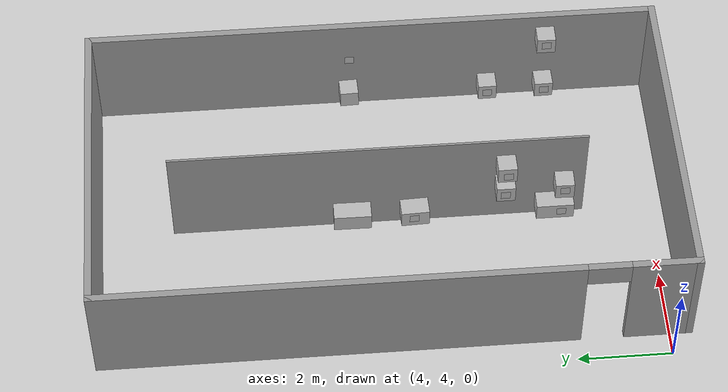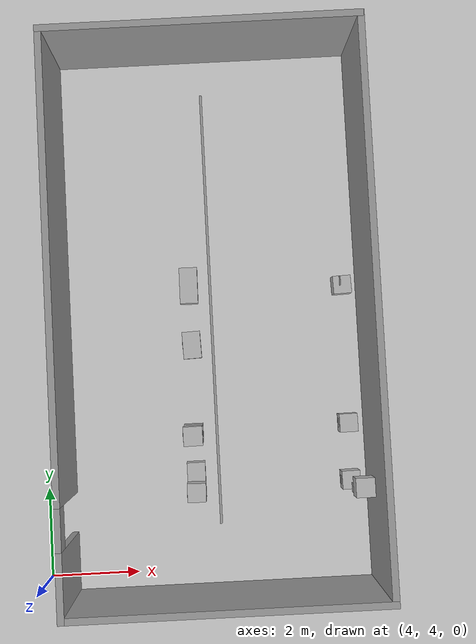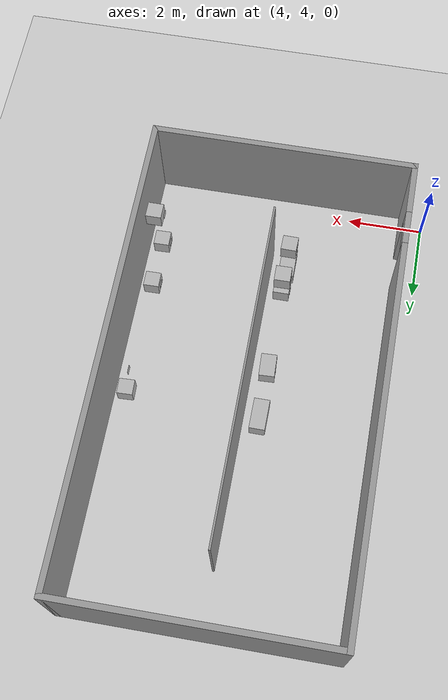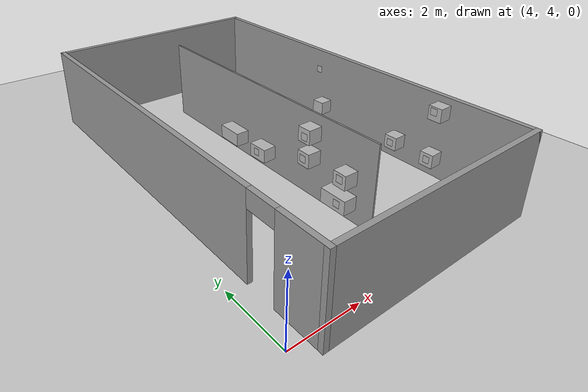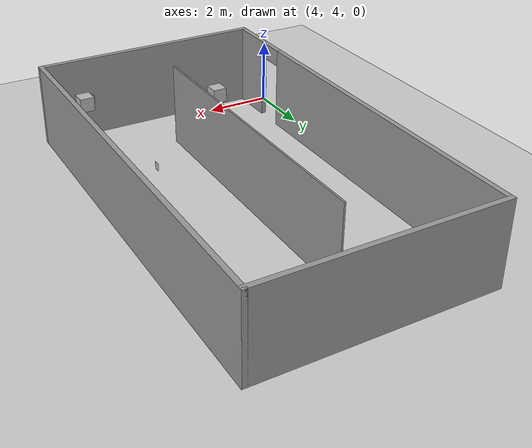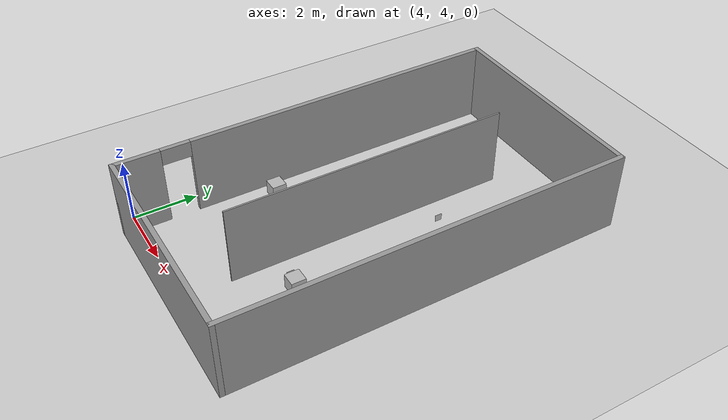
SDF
<sdf version="1.6">
 <world name="default">
  <model name="ground_plane">
   <static>1</static>
   <link name="link">
    <collision name="collision">
     <geometry><plane><normal>0 0 1</normal><size>300 300</size></plane></geometry>
     <surface>
      <contact><collide_bitmask>65535</collide_bitmask></contact>
      <friction><ode><mu>100</mu><mu2>50</mu2></ode></friction>
     </surface>
    </collision>
    <visual name="visual">
     <geometry><plane><normal>0 0 1</normal><size>100 100</size></plane></geometry>
     <material>
      <script><uri>file://media/materials/scripts/gazebo.material</uri><name>Gazebo/Grey</name></script>
     </material>
    </visual>
   </link>
  </model>
  <model name="CuboQR8">
   <link name="link">
    <pose>1.33161 0.916406 0.895911 -0 -0 -0.362899</pose>
    <inertial>
     <mass>0.39</mass>
     <inertia><ixx>0.00058</ixx><ixy>0</ixy><ixz>0</ixz><iyy>0.00058</iyy><iyz>0</iyz><izz>0.00019</izz></inertia>
    </inertial>
    <visual name="visual">
     <geometry><box><size>0.4 0.8 0.4</size></box></geometry>
     <material>
      <script>
       <uri>model://Caja/materials/scripts</uri>
       <uri>model://Caja/materials/textures</uri>
       <name>Caja/Diffuse</name>
      </script>
      <shader type="pixel"/>
     </material>
    </visual>
    <collision name="collision">
     <geometry><box><size>0.4 0.8 0.4</size></box></geometry>
     <surface>
      <friction>
       <ode><mu>1</mu><mu2>1</mu2><fdir1>0 0 0</fdir1><slip1>0</slip1><slip2>0</slip2></ode>
       <torsional>
        <coefficient>1</coefficient>
        <patch_radius>0</patch_radius>
        <surface_radius>0</surface_radius>
        <use_patch_radius>1</use_patch_radius>
        <ode><slip>0</slip></ode>
       </torsional>
      </friction>
      <bounce><restitution_coefficient>0</restitution_coefficient><threshold>1e+06</threshold></bounce>
      <contact>
       <collide_without_contact>0</collide_without_contact>
       <collide_without_contact_bitmask>1</collide_without_contact_bitmask>
       <collide_bitmask>1</collide_bitmask>
       <ode>
        <soft_cfm>0</soft_cfm>
        <soft_erp>0.2</soft_erp>
        <kp>1e+13</kp>
        <kd>1</kd>
        <max_vel>0.01</max_vel>
        <min_depth>0</min_depth>
       </ode>
       <bullet>
        <split_impulse>1</split_impulse>
        <split_impulse_penetration_threshold>-0.01</split_impulse_penetration_threshold>
        <soft_cfm>0</soft_cfm>
        <soft_erp>0.2</soft_erp>
        <kp>1e+13</kp>
        <kd>1</kd>
       </bullet>
      </contact>
     </surface>
    </collision>
   </link>
   <static>0</static>
   <pose>6.52855 9.13954 -0.044975 -9e-06 -4e-06 0.354617</pose>
  </model>
  <model name="CuboQR30">
   <link name="link">
    <pose>1.4917 0.506438 0.904274 0 -0 0.004736</pose>
    <inertial>
     <mass>0.39</mass>
     <inertia><ixx>0.00058</ixx><ixy>0</ixy><ixz>0</ixz><iyy>0.00058</iyy><iyz>0</iyz><izz>0.00019</izz></inertia>
    </inertial>
    <visual name="visual">
     <geometry><box><size>0.4 0.6 0.4</size></box></geometry>
     <material>
      <script>
       <uri>model://Caja/materials/scripts</uri>
       <uri>model://Caja/materials/textures</uri>
       <name>Caja/Diffuse</name>
      </script>
      <shader type="pixel"/>
     </material>
    </visual>
    <collision name="collision">
     <geometry><box><size>0.4 0.6 0.4</size></box></geometry>
     <surface>
      <friction>
       <ode><mu>1</mu><mu2>1</mu2><fdir1>0 0 0</fdir1><slip1>0</slip1><slip2>0</slip2></ode>
       <torsional>
        <coefficient>1</coefficient>
        <patch_radius>0</patch_radius>
        <surface_radius>0</surface_radius>
        <use_patch_radius>1</use_patch_radius>
        <ode><slip>0</slip></ode>
       </torsional>
      </friction>
      <bounce><restitution_coefficient>0</restitution_coefficient><threshold>1e+06</threshold></bounce>
      <contact>
       <collide_without_contact>0</collide_without_contact>
       <collide_without_contact_bitmask>1</collide_without_contact_bitmask>
       <collide_bitmask>1</collide_bitmask>
       <ode>
        <soft_cfm>0</soft_cfm>
        <soft_erp>0.2</soft_erp>
        <kp>1e+13</kp>
        <kd>1</kd>
        <max_vel>0.01</max_vel>
        <min_depth>0</min_depth>
       </ode>
       <bullet>
        <split_impulse>1</split_impulse>
        <split_impulse_penetration_threshold>-0.01</split_impulse_penetration_threshold>
        <soft_cfm>0</soft_cfm>
        <soft_erp>0.2</soft_erp>
        <kp>1e+13</kp>
        <kd>1</kd>
       </bullet>
      </contact>
     </surface>
    </collision>
   </link>
   <static>0</static>
   <pose>5.99382 8.57393 -0.053336 -1.7e-05 2e-06 0.031771</pose>
  </model>
  <model name="CuboQR4">
   <link name="link">
    <pose>1.4541 1.7784 0.940521 0 -0 0</pose>
    <inertial>
     <mass>0.39</mass>
     <inertia><ixx>0.00058</ixx><ixy>0</ixy><ixz>0</ixz><iyy>0.00058</iyy><iyz>0</iyz><izz>0.00019</izz></inertia>
    </inertial>
    <visual name="visual">
     <geometry><box><size>0.4 0.8 0.4</size></box></geometry>
     <material>
      <script>
       <uri>model://Caja/materials/scripts</uri>
       <uri>model://Caja/materials/textures</uri>
       <name>Caja/Diffuse</name>
      </script>
      <shader type="pixel"/>
     </material>
    </visual>
    <collision name="collision">
     <geometry><box><size>0.4 0.8 0.4</size></box></geometry>
     <surface>
      <friction>
       <ode><mu>1</mu><mu2>1</mu2><fdir1>0 0 0</fdir1><slip1>0</slip1><slip2>0</slip2></ode>
       <torsional>
        <coefficient>1</coefficient>
        <patch_radius>0</patch_radius>
        <surface_radius>0</surface_radius>
        <use_patch_radius>1</use_patch_radius>
        <ode><slip>0</slip></ode>
       </torsional>
      </friction>
      <bounce><restitution_coefficient>0</restitution_coefficient><threshold>1e+06</threshold></bounce>
      <contact>
       <collide_without_contact>0</collide_without_contact>
       <collide_without_contact_bitmask>1</collide_without_contact_bitmask>
       <collide_bitmask>1</collide_bitmask>
       <ode>
        <soft_cfm>0</soft_cfm>
        <soft_erp>0.2</soft_erp>
        <kp>1e+13</kp>
        <kd>1</kd>
        <max_vel>0.01</max_vel>
        <min_depth>0</min_depth>
       </ode>
       <bullet>
        <split_impulse>1</split_impulse>
        <split_impulse_penetration_threshold>-0.01</split_impulse_penetration_threshold>
        <soft_cfm>0</soft_cfm>
        <soft_erp>0.2</soft_erp>
        <kp>1e+13</kp>
        <kd>1</kd>
       </bullet>
      </contact>
     </surface>
    </collision>
   </link>
   <static>0</static>
   <pose>5.98514 4.34705 -0.089558 -1.7e-05 -1e-06 0.001748</pose>
  </model>
  <model name="CuboQR2">
   <link name="link">
    <pose>1.59419 -0.501465 1.58657 -0 -0 -0.004218</pose>
    <inertial>
     <mass>0.39</mass>
     <inertia><ixx>0.00058</ixx><ixy>0</ixy><ixz>0</ixz><iyy>0.00058</iyy><iyz>0</iyz><izz>0.00019</izz></inertia>
    </inertial>
    <visual name="visual">
     <geometry><box><size>0.4 0.4 0.4</size></box></geometry>
     <material>
      <script>
       <uri>model://Caja/materials/scripts</uri>
       <uri>model://Caja/materials/textures</uri>
       <name>Caja/Diffuse</name>
      </script>
      <shader type="pixel"/>
     </material>
    </visual>
    <collision name="collision">
     <geometry><box><size>0.4 0.4 0.4</size></box></geometry>
     <surface>
      <friction>
       <ode><mu>1</mu><mu2>1</mu2><fdir1>0 0 0</fdir1><slip1>0</slip1><slip2>0</slip2></ode>
       <torsional>
        <coefficient>1</coefficient>
        <patch_radius>0</patch_radius>
        <surface_radius>0</surface_radius>
        <use_patch_radius>1</use_patch_radius>
        <ode><slip>0</slip></ode>
       </torsional>
      </friction>
      <bounce><restitution_coefficient>0</restitution_coefficient><threshold>1e+06</threshold></bounce>
      <contact>
       <collide_without_contact>0</collide_without_contact>
       <collide_without_contact_bitmask>1</collide_without_contact_bitmask>
       <collide_bitmask>1</collide_bitmask>
       <ode>
        <soft_cfm>0</soft_cfm>
        <soft_erp>0.2</soft_erp>
        <kp>1e+13</kp>
        <kd>1</kd>
        <max_vel>0.01</max_vel>
        <min_depth>0</min_depth>
       </ode>
       <bullet>
        <split_impulse>1</split_impulse>
        <split_impulse_penetration_threshold>-0.01</split_impulse_penetration_threshold>
        <soft_cfm>0</soft_cfm>
        <soft_erp>0.2</soft_erp>
        <kp>1e+13</kp>
        <kd>1</kd>
       </bullet>
      </contact>
     </surface>
    </collision>
   </link>
   <static>0</static>
   <pose>5.85292 6.48203 -0.048167 7e-06 9e-06 -0.01717</pose>
  </model>
  <model name="CuboQR3">
   <link name="link">
    <pose>1.72852 -0.054688 2.25892 0 -0 0.030523</pose>
    <inertial>
     <mass>0.39</mass>
     <inertia><ixx>0.00058</ixx><ixy>0</ixy><ixz>0</ixz><iyy>0.00058</iyy><iyz>0</iyz><izz>0.00019</izz></inertia>
    </inertial>
    <visual name="visual">
     <geometry><box><size>0.4 0.4 0.4</size></box></geometry>
     <material>
      <script>
       <uri>model://Caja/materials/scripts</uri>
       <uri>model://Caja/materials/textures</uri>
       <name>Caja/Diffuse</name>
      </script>
      <shader type="pixel"/>
     </material>
    </visual>
    <collision name="collision">
     <geometry><box><size>0.4 0.4 0.4</size></box></geometry>
     <surface>
      <friction>
       <ode><mu>1</mu><mu2>1</mu2><fdir1>0 0 0</fdir1><slip1>0</slip1><slip2>0</slip2></ode>
       <torsional>
        <coefficient>1</coefficient>
        <patch_radius>0</patch_radius>
        <surface_radius>0</surface_radius>
        <use_patch_radius>1</use_patch_radius>
        <ode><slip>0</slip></ode>
       </torsional>
      </friction>
      <bounce><restitution_coefficient>0</restitution_coefficient><threshold>1e+06</threshold></bounce>
      <contact>
       <collide_without_contact>0</collide_without_contact>
       <collide_without_contact_bitmask>1</collide_without_contact_bitmask>
       <collide_bitmask>1</collide_bitmask>
       <ode>
        <soft_cfm>0</soft_cfm>
        <soft_erp>0.2</soft_erp>
        <kp>1e+13</kp>
        <kd>1</kd>
        <max_vel>0.01</max_vel>
        <min_depth>0</min_depth>
       </ode>
       <bullet>
        <split_impulse>1</split_impulse>
        <split_impulse_penetration_threshold>-0.01</split_impulse_penetration_threshold>
        <soft_cfm>0</soft_cfm>
        <soft_erp>0.2</soft_erp>
        <kp>1e+13</kp>
        <kd>1</kd>
       </bullet>
      </contact>
     </surface>
    </collision>
   </link>
   <static>0</static>
   <pose>5.70295 7.29191 -0.054824 -7e-06 3e-06 -0.019304</pose>
  </model>
  <model name="Plano">
   <link name="link">
    <gravity>0</gravity>
    <pose>-0.103478 0.986463 0.8108 0 -0 0</pose>
    <inertial>
     <mass>1e-06</mass>
     <inertia><ixx>0.00058</ixx><ixy>0</ixy><ixz>0</ixz><iyy>0.00058</iyy><iyz>0</iyz><izz>0.00019</izz></inertia>
    </inertial>
    <visual name="visual">
     <geometry><box><size>0.2 1e-06 0.2</size></box></geometry>
     <material>
      <script>
       <uri>model://Plano/materials/scripts</uri>
       <uri>model://Plano/materials/textures</uri>
       <name>Plano/Diffuse</name>
      </script>
      <shader type="pixel"/>
     </material>
     <cast_shadows>0</cast_shadows>
    </visual>
    <collision name="collision">
     <geometry><box><size>0.2 1e-06 0.2</size></box></geometry>
     <surface>
      <friction>
       <ode><mu>1</mu><mu2>1</mu2><fdir1>0 0 0</fdir1><slip1>0</slip1><slip2>0</slip2></ode>
       <torsional>
        <coefficient>1</coefficient>
        <patch_radius>0</patch_radius>
        <surface_radius>0</surface_radius>
        <use_patch_radius>1</use_patch_radius>
        <ode><slip>0</slip></ode>
       </torsional>
      </friction>
      <bounce><restitution_coefficient>0</restitution_coefficient><threshold>1e+06</threshold></bounce>
      <contact>
       <collide_without_contact>0</collide_without_contact>
       <collide_without_contact_bitmask>1</collide_without_contact_bitmask>
       <collide_bitmask>1</collide_bitmask>
       <ode>
        <soft_cfm>0</soft_cfm>
        <soft_erp>0.2</soft_erp>
        <kp>1e+13</kp>
        <kd>1</kd>
        <max_vel>0.01</max_vel>
        <min_depth>0</min_depth>
       </ode>
       <bullet>
        <split_impulse>1</split_impulse>
        <split_impulse_penetration_threshold>-0.01</split_impulse_penetration_threshold>
        <soft_cfm>0</soft_cfm>
        <soft_erp>0.2</soft_erp>
        <kp>1e+13</kp>
        <kd>1</kd>
       </bullet>
      </contact>
     </surface>
    </collision>
   </link>
   <static>0</static>
   <pose>6.24495 5.89293 0.053748 0 0 -1.57043</pose>
  </model>
  <model name="Plano2">
   <link name="link">
    <gravity>0</gravity>
    <pose>0.45527 1.12131 0.660976 0 -0 0</pose>
    <inertial>
     <mass>1e-06</mass>
     <inertia><ixx>0.00058</ixx><ixy>0</ixy><ixz>0</ixz><iyy>0.00058</iyy><iyz>0</iyz><izz>0.00019</izz></inertia>
    </inertial>
    <visual name="visual">
     <geometry><box><size>0.2 1e-06 0.2</size></box></geometry>
     <material>
      <script>
       <uri>model://Plano2/materials/scripts</uri>
       <uri>model://Plano2/materials/textures</uri>
       <name>Plano2/Diffuse</name>
      </script>
      <shader type="pixel"/>
     </material>
     <cast_shadows>0</cast_shadows>
    </visual>
    <collision name="collision">
     <geometry><box><size>0.2 1e-06 0.2</size></box></geometry>
     <surface>
      <friction>
       <ode><mu>1</mu><mu2>1</mu2><fdir1>0 0 0</fdir1><slip1>0</slip1><slip2>0</slip2></ode>
       <torsional>
        <coefficient>1</coefficient>
        <patch_radius>0</patch_radius>
        <surface_radius>0</surface_radius>
        <use_patch_radius>1</use_patch_radius>
        <ode><slip>0</slip></ode>
       </torsional>
      </friction>
      <bounce><restitution_coefficient>0</restitution_coefficient><threshold>1e+06</threshold></bounce>
      <contact>
       <collide_without_contact>0</collide_without_contact>
       <collide_without_contact_bitmask>1</collide_without_contact_bitmask>
       <collide_bitmask>1</collide_bitmask>
       <ode>
        <soft_cfm>0</soft_cfm>
        <soft_erp>0.2</soft_erp>
        <kp>1e+13</kp>
        <kd>1</kd>
        <max_vel>0.01</max_vel>
        <min_depth>0</min_depth>
       </ode>
       <bullet>
        <split_impulse>1</split_impulse>
        <split_impulse_penetration_threshold>-0.01</split_impulse_penetration_threshold>
        <soft_cfm>0</soft_cfm>
        <soft_erp>0.2</soft_erp>
        <kp>1e+13</kp>
        <kd>1</kd>
       </bullet>
      </contact>
     </surface>
    </collision>
   </link>
   <static>0</static>
   <pose>6.11634 6.41923 0.907634 0 0 -1.5813</pose>
  </model>
  <model name="Caja">
   <link name="link">
    <pose>1.53848 1.3495 -1.37205 0.031423 0.044064 -0.000927</pose>
    <inertial>
     <mass>0.39</mass>
     <inertia><ixx>0.00058</ixx><ixy>0</ixy><ixz>0</ixz><iyy>0.00058</iyy><iyz>0</iyz><izz>0.00019</izz></inertia>
    </inertial>
    <visual name="visual">
     <geometry><box><size>0.4 0.4 0.4</size></box></geometry>
     <material>
      <script>
       <uri>model://Caja/materials/scripts</uri>
       <uri>model://Caja/materials/textures</uri>
       <name>Caja/Diffuse</name>
      </script>
      <shader type="pixel"/>
     </material>
    </visual>
    <collision name="collision">
     <geometry><box><size>0.4 0.4 0.4</size></box></geometry>
     <surface>
      <friction>
       <ode><mu>1</mu><mu2>1</mu2><fdir1>0 0 0</fdir1><slip1>0</slip1><slip2>0</slip2></ode>
       <torsional>
        <coefficient>1</coefficient>
        <patch_radius>0</patch_radius>
        <surface_radius>0</surface_radius>
        <use_patch_radius>1</use_patch_radius>
        <ode><slip>0</slip></ode>
       </torsional>
      </friction>
      <bounce><restitution_coefficient>0</restitution_coefficient><threshold>1e+06</threshold></bounce>
      <contact>
       <collide_without_contact>0</collide_without_contact>
       <collide_without_contact_bitmask>1</collide_without_contact_bitmask>
       <collide_bitmask>1</collide_bitmask>
       <ode>
        <soft_cfm>0</soft_cfm>
        <soft_erp>0.2</soft_erp>
        <kp>1e+13</kp>
        <kd>1</kd>
        <max_vel>0.01</max_vel>
        <min_depth>0</min_depth>
       </ode>
       <bullet>
        <split_impulse>1</split_impulse>
        <split_impulse_penetration_threshold>-0.01</split_impulse_penetration_threshold>
        <soft_cfm>0</soft_cfm>
        <soft_erp>0.2</soft_erp>
        <kp>1e+13</kp>
        <kd>1</kd>
       </bullet>
      </contact>
     </surface>
    </collision>
   </link>
   <static>0</static>
   <pose>5.83979 5.86875 0.229074 1.53941 -0.002301 -0.046636</pose>
  </model>
  <model name="Plano3">
   <link name="link">
    <gravity>0</gravity>
    <pose>-0.321438 0.622252 1.59842 0 -0 0</pose>
    <inertial>
     <mass>1e-06</mass>
     <inertia><ixx>0.00058</ixx><ixy>0</ixy><ixz>0</ixz><iyy>0.00058</iyy><iyz>0</iyz><izz>0.00019</izz></inertia>
    </inertial>
    <visual name="visual">
     <geometry><box><size>0.2 1e-06 0.2</size></box></geometry>
     <material>
      <script>
       <uri>model://Plano3/materials/scripts</uri>
       <uri>model://Plano3/materials/textures</uri>
       <name>Plano3/Diffuse</name>
      </script>
      <shader type="pixel"/>
     </material>
     <cast_shadows>0</cast_shadows>
    </visual>
    <collision name="collision">
     <geometry><box><size>0.2 1e-06 0.2</size></box></geometry>
     <surface>
      <friction>
       <ode><mu>1</mu><mu2>1</mu2><fdir1>0 0 0</fdir1><slip1>0</slip1><slip2>0</slip2></ode>
       <torsional>
        <coefficient>1</coefficient>
        <patch_radius>0</patch_radius>
        <surface_radius>0</surface_radius>
        <use_patch_radius>1</use_patch_radius>
        <ode><slip>0</slip></ode>
       </torsional>
      </friction>
      <bounce><restitution_coefficient>0</restitution_coefficient><threshold>1e+06</threshold></bounce>
      <contact>
       <collide_without_contact>0</collide_without_contact>
       <collide_without_contact_bitmask>1</collide_without_contact_bitmask>
       <collide_bitmask>1</collide_bitmask>
       <ode>
        <soft_cfm>0</soft_cfm>
        <soft_erp>0.2</soft_erp>
        <kp>1e+13</kp>
        <kd>1</kd>
        <max_vel>0.01</max_vel>
        <min_depth>0</min_depth>
       </ode>
       <bullet>
        <split_impulse>1</split_impulse>
        <split_impulse_penetration_threshold>-0.01</split_impulse_penetration_threshold>
        <soft_cfm>0</soft_cfm>
        <soft_erp>0.2</soft_erp>
        <kp>1e+13</kp>
        <kd>1</kd>
       </bullet>
      </contact>
     </surface>
    </collision>
   </link>
   <static>0</static>
   <pose>6.60144 6.90216 -0.05097 0 0 -1.57531</pose>
  </model>
  <model name="Plano4">
   <link name="link">
    <gravity>0</gravity>
    <pose>0.342529 1.36427 1.91258 0 -0 0.032722</pose>
    <inertial>
     <mass>1e-06</mass>
     <inertia><ixx>0.00058</ixx><ixy>0</ixy><ixz>0</ixz><iyy>0.00058</iyy><iyz>0</iyz><izz>0.00019</izz></inertia>
    </inertial>
    <visual name="visual">
     <geometry><box><size>0.2 1e-06 0.2</size></box></geometry>
     <material>
      <script>
       <uri>model://Plano4/materials/scripts</uri>
       <uri>model://Plano4/materials/textures</uri>
       <name>Plano4/Diffuse</name>
      </script>
      <shader type="pixel"/>
     </material>
     <cast_shadows>0</cast_shadows>
    </visual>
    <collision name="collision">
     <geometry><box><size>0.2 1e-06 0.2</size></box></geometry>
     <surface>
      <friction>
       <ode><mu>1</mu><mu2>1</mu2><fdir1>0 0 0</fdir1><slip1>0</slip1><slip2>0</slip2></ode>
       <torsional>
        <coefficient>1</coefficient>
        <patch_radius>0</patch_radius>
        <surface_radius>0</surface_radius>
        <use_patch_radius>1</use_patch_radius>
        <ode><slip>0</slip></ode>
       </torsional>
      </friction>
      <bounce><restitution_coefficient>0</restitution_coefficient><threshold>1e+06</threshold></bounce>
      <contact>
       <collide_without_contact>0</collide_without_contact>
       <collide_without_contact_bitmask>1</collide_without_contact_bitmask>
       <collide_bitmask>1</collide_bitmask>
       <ode>
        <soft_cfm>0</soft_cfm>
        <soft_erp>0.2</soft_erp>
        <kp>1e+13</kp>
        <kd>1</kd>
        <max_vel>0.01</max_vel>
        <min_depth>0</min_depth>
       </ode>
       <bullet>
        <split_impulse>1</split_impulse>
        <split_impulse_penetration_threshold>-0.01</split_impulse_penetration_threshold>
        <soft_cfm>0</soft_cfm>
        <soft_erp>0.2</soft_erp>
        <kp>1e+13</kp>
        <kd>1</kd>
       </bullet>
      </contact>
     </surface>
    </collision>
   </link>
   <static>0</static>
   <pose>5.86012 7.53798 0.26346 0 0 -1.5802</pose>
  </model>
  <model name="Plano30">
   <link name="link">
    <gravity>0</gravity>
    <pose>0.142948 1.63527 -0.030652 0 -0 0.095189</pose>
    <inertial>
     <mass>1e-06</mass>
     <inertia><ixx>0.00058</ixx><ixy>0</ixy><ixz>0</ixz><iyy>0.00058</iyy><iyz>0</iyz><izz>0.00019</izz></inertia>
    </inertial>
    <visual name="visual">
     <geometry><box><size>0.2 1e-06 0.2</size></box></geometry>
     <material>
      <script>
       <uri>model://Plano30/materials/scripts</uri>
       <uri>model://Plano30/materials/textures</uri>
       <name>Plano30/Diffuse</name>
      </script>
      <shader type="pixel"/>
     </material>
     <cast_shadows>0</cast_shadows>
    </visual>
    <collision name="collision">
     <geometry><box><size>0.2 1e-06 0.2</size></box></geometry>
     <surface>
      <friction>
       <ode><mu>1</mu><mu2>1</mu2><fdir1>0 0 0</fdir1><slip1>0</slip1><slip2>0</slip2></ode>
       <torsional>
        <coefficient>1</coefficient>
        <patch_radius>0</patch_radius>
        <surface_radius>0</surface_radius>
        <use_patch_radius>1</use_patch_radius>
        <ode><slip>0</slip></ode>
       </torsional>
      </friction>
      <bounce><restitution_coefficient>0</restitution_coefficient><threshold>1e+06</threshold></bounce>
      <contact>
       <collide_without_contact>0</collide_without_contact>
       <collide_without_contact_bitmask>1</collide_without_contact_bitmask>
       <collide_bitmask>1</collide_bitmask>
       <ode>
        <soft_cfm>0</soft_cfm>
        <soft_erp>0.2</soft_erp>
        <kp>1e+13</kp>
        <kd>1</kd>
        <max_vel>0.01</max_vel>
        <min_depth>0</min_depth>
       </ode>
       <bullet>
        <split_impulse>1</split_impulse>
        <split_impulse_penetration_threshold>-0.01</split_impulse_penetration_threshold>
        <soft_cfm>0</soft_cfm>
        <soft_erp>0.2</soft_erp>
        <kp>1e+13</kp>
        <kd>1</kd>
       </bullet>
      </contact>
     </surface>
    </collision>
   </link>
   <static>0</static>
   <pose>5.63172 9.35401 0.90979 0 0 -1.61066</pose>
  </model>
  <model name="Plano12">
   <link name="link">
    <gravity>0</gravity>
    <pose>-0.824351 -0.041274 1.91889 0 -0 0.02962</pose>
    <inertial>
     <mass>1e-06</mass>
     <inertia><ixx>0.00058</ixx><ixy>0</ixy><ixz>0</ixz><iyy>0.00058</iyy><iyz>0</iyz><izz>0.00019</izz></inertia>
    </inertial>
    <visual name="visual">
     <geometry><box><size>0.2 1e-06 0.2</size></box></geometry>
     <material>
      <script>
       <uri>model://Plano12/materials/scripts</uri>
       <uri>model://Plano12/materials/textures</uri>
       <name>Plano12/Diffuse</name>
      </script>
      <shader type="pixel"/>
     </material>
     <cast_shadows>0</cast_shadows>
    </visual>
    <collision name="collision">
     <geometry><box><size>0.2 1e-06 0.2</size></box></geometry>
     <surface>
      <friction>
       <ode><mu>1</mu><mu2>1</mu2><fdir1>0 0 0</fdir1><slip1>0</slip1><slip2>0</slip2></ode>
       <torsional>
        <coefficient>1</coefficient>
        <patch_radius>0</patch_radius>
        <surface_radius>0</surface_radius>
        <use_patch_radius>1</use_patch_radius>
        <ode><slip>0</slip></ode>
       </torsional>
      </friction>
      <bounce><restitution_coefficient>0</restitution_coefficient><threshold>1e+06</threshold></bounce>
      <contact>
       <collide_without_contact>0</collide_without_contact>
       <collide_without_contact_bitmask>1</collide_without_contact_bitmask>
       <collide_bitmask>1</collide_bitmask>
       <ode>
        <soft_cfm>0</soft_cfm>
        <soft_erp>0.2</soft_erp>
        <kp>1e+13</kp>
        <kd>1</kd>
        <max_vel>0.01</max_vel>
        <min_depth>0</min_depth>
       </ode>
       <bullet>
        <split_impulse>1</split_impulse>
        <split_impulse_penetration_threshold>-0.01</split_impulse_penetration_threshold>
        <soft_cfm>0</soft_cfm>
        <soft_erp>0.2</soft_erp>
        <kp>1e+13</kp>
        <kd>1</kd>
       </bullet>
      </contact>
     </surface>
    </collision>
   </link>
   <static>0</static>
   <pose>10.7037 9.47205 0.27256 0 0 -1.59709</pose>
  </model>
  <model name="CuboQR29">
   <link name="link">
    <pose>0.690619 0.614958 1.22299 0.424631 -0.083036 -0.038114</pose>
    <inertial>
     <mass>0.39</mass>
     <inertia><ixx>0.00058</ixx><ixy>0</ixy><ixz>0</ixz><iyy>0.00058</iyy><iyz>0</iyz><izz>0.00019</izz></inertia>
    </inertial>
    <visual name="visual">
     <geometry><box><size>0.4 0.4 0.4</size></box></geometry>
     <material>
      <script>
       <uri>model://Caja/materials/scripts</uri>
       <uri>model://Caja/materials/textures</uri>
       <name>Caja/Diffuse</name>
      </script>
      <shader type="pixel"/>
     </material>
    </visual>
    <collision name="collision">
     <geometry><box><size>0.4 0.4 0.4</size></box></geometry>
     <surface>
      <friction>
       <ode><mu>1</mu><mu2>1</mu2><fdir1>0 0 0</fdir1><slip1>0</slip1><slip2>0</slip2></ode>
       <torsional>
        <coefficient>1</coefficient>
        <patch_radius>0</patch_radius>
        <surface_radius>0</surface_radius>
        <use_patch_radius>1</use_patch_radius>
        <ode><slip>0</slip></ode>
       </torsional>
      </friction>
      <bounce><restitution_coefficient>0</restitution_coefficient><threshold>1e+06</threshold></bounce>
      <contact>
       <collide_without_contact>0</collide_without_contact>
       <collide_without_contact_bitmask>1</collide_without_contact_bitmask>
       <collide_bitmask>1</collide_bitmask>
       <ode>
        <soft_cfm>0</soft_cfm>
        <soft_erp>0.2</soft_erp>
        <kp>1e+13</kp>
        <kd>1</kd>
        <max_vel>0.01</max_vel>
        <min_depth>0</min_depth>
       </ode>
       <bullet>
        <split_impulse>1</split_impulse>
        <split_impulse_penetration_threshold>-0.01</split_impulse_penetration_threshold>
        <soft_cfm>0</soft_cfm>
        <soft_erp>0.2</soft_erp>
        <kp>1e+13</kp>
        <kd>1</kd>
       </bullet>
      </contact>
     </surface>
    </collision>
   </link>
   <static>0</static>
   <pose>9.85707 9.48132 0.085116 -0.429419 -1.47945 -1.53026</pose>
  </model>
  <model name="CuboQR26">
   <link name="link">
    <pose>0.660263 0.176511 0.326352 0.050369 0 0.010192</pose>
    <inertial>
     <mass>0.39</mass>
     <inertia><ixx>0.00058</ixx><ixy>0</ixy><ixz>0</ixz><iyy>0.00058</iyy><iyz>0</iyz><izz>0.00019</izz></inertia>
    </inertial>
    <visual name="visual">
     <geometry><box><size>0.4 0.4 0.4</size></box></geometry>
     <material>
      <script>
       <uri>model://Caja/materials/scripts</uri>
       <uri>model://Caja/materials/textures</uri>
       <name>Caja/Diffuse</name>
      </script>
      <shader type="pixel"/>
     </material>
    </visual>
    <collision name="collision">
     <geometry><box><size>0.4 0.4 0.4</size></box></geometry>
     <surface>
      <friction>
       <ode><mu>1</mu><mu2>1</mu2><fdir1>0 0 0</fdir1><slip1>0</slip1><slip2>0</slip2></ode>
       <torsional>
        <coefficient>1</coefficient>
        <patch_radius>0</patch_radius>
        <surface_radius>0</surface_radius>
        <use_patch_radius>1</use_patch_radius>
        <ode><slip>0</slip></ode>
       </torsional>
      </friction>
      <bounce><restitution_coefficient>0</restitution_coefficient><threshold>1e+06</threshold></bounce>
      <contact>
       <collide_without_contact>0</collide_without_contact>
       <collide_without_contact_bitmask>1</collide_without_contact_bitmask>
       <collide_bitmask>1</collide_bitmask>
       <ode>
        <soft_cfm>0</soft_cfm>
        <soft_erp>0.2</soft_erp>
        <kp>1e+13</kp>
        <kd>1</kd>
        <max_vel>0.01</max_vel>
        <min_depth>0</min_depth>
       </ode>
       <bullet>
        <split_impulse>1</split_impulse>
        <split_impulse_penetration_threshold>-0.01</split_impulse_penetration_threshold>
        <soft_cfm>0</soft_cfm>
        <soft_erp>0.2</soft_erp>
        <kp>1e+13</kp>
        <kd>1</kd>
       </bullet>
      </contact>
     </surface>
    </collision>
   </link>
   <static>0</static>
   <pose>11.1817 7.05082 0.188929 1.57421 -1.56064 -1.61587</pose>
  </model>
  <model name="Plano26_0">
   <link name="link">
    <gravity>0</gravity>
    <pose>-0.169184 -0.069468 -0.055235 0 -0 0.01407</pose>
    <inertial>
     <mass>1e-06</mass>
     <inertia><ixx>0.00058</ixx><ixy>0</ixy><ixz>0</ixz><iyy>0.00058</iyy><iyz>0</iyz><izz>0.00019</izz></inertia>
    </inertial>
    <visual name="visual">
     <geometry><box><size>0.2 1e-06 0.2</size></box></geometry>
     <material>
      <script>
       <uri>model://Plano26/materials/scripts</uri>
       <uri>model://Plano26/materials/textures</uri>
       <name>Plano26/Diffuse</name>
      </script>
      <shader type="pixel"/>
     </material>
     <cast_shadows>0</cast_shadows>
    </visual>
    <collision name="collision">
     <geometry><box><size>0.2 1e-06 0.2</size></box></geometry>
     <surface>
      <friction>
       <ode><mu>1</mu><mu2>1</mu2><fdir1>0 0 0</fdir1><slip1>0</slip1><slip2>0</slip2></ode>
       <torsional>
        <coefficient>1</coefficient>
        <patch_radius>0</patch_radius>
        <surface_radius>0</surface_radius>
        <use_patch_radius>1</use_patch_radius>
        <ode><slip>0</slip></ode>
       </torsional>
      </friction>
      <bounce><restitution_coefficient>0</restitution_coefficient><threshold>1e+06</threshold></bounce>
      <contact>
       <collide_without_contact>0</collide_without_contact>
       <collide_without_contact_bitmask>1</collide_without_contact_bitmask>
       <collide_bitmask>1</collide_bitmask>
       <ode>
        <soft_cfm>0</soft_cfm>
        <soft_erp>0.2</soft_erp>
        <kp>1e+13</kp>
        <kd>1</kd>
        <max_vel>0.01</max_vel>
        <min_depth>0</min_depth>
       </ode>
       <bullet>
        <split_impulse>1</split_impulse>
        <split_impulse_penetration_threshold>-0.01</split_impulse_penetration_threshold>
        <soft_cfm>0</soft_cfm>
        <soft_erp>0.2</soft_erp>
        <kp>1e+13</kp>
        <kd>1</kd>
       </bullet>
      </contact>
     </surface>
    </collision>
   </link>
   <static>0</static>
   <pose>10.7205 7.06672 0.90647 0 0 -1.58759</pose>
  </model>
  <model name="CuboQR19">
   <link name="link">
    <pose>-3.06365 0.40851 -2.07539 0.030877 0.017361 -0.698851</pose>
    <inertial>
     <mass>0.39</mass>
     <inertia><ixx>0.00058</ixx><ixy>0</ixy><ixz>0</ixz><iyy>0.00058</iyy><iyz>0</iyz><izz>0.00019</izz></inertia>
    </inertial>
    <visual name="visual">
     <geometry><box><size>0.4 0.4 0.4</size></box></geometry>
     <material>
      <script>
       <uri>model://Caja/materials/scripts</uri>
       <uri>model://Caja/materials/textures</uri>
       <name>Caja/Diffuse</name>
      </script>
      <shader type="pixel"/>
     </material>
    </visual>
    <collision name="collision">
     <geometry><box><size>0.4 0.4 0.4</size></box></geometry>
     <surface>
      <friction>
       <ode><mu>1</mu><mu2>1</mu2><fdir1>0 0 0</fdir1><slip1>0</slip1><slip2>0</slip2></ode>
       <torsional>
        <coefficient>1</coefficient>
        <patch_radius>0</patch_radius>
        <surface_radius>0</surface_radius>
        <use_patch_radius>1</use_patch_radius>
        <ode><slip>0</slip></ode>
       </torsional>
      </friction>
      <bounce><restitution_coefficient>0</restitution_coefficient><threshold>1e+06</threshold></bounce>
      <contact>
       <collide_without_contact>0</collide_without_contact>
       <collide_without_contact_bitmask>1</collide_without_contact_bitmask>
       <collide_bitmask>1</collide_bitmask>
       <ode>
        <soft_cfm>0</soft_cfm>
        <soft_erp>0.2</soft_erp>
        <kp>1e+13</kp>
        <kd>1</kd>
        <max_vel>0.01</max_vel>
        <min_depth>0</min_depth>
       </ode>
       <bullet>
        <split_impulse>1</split_impulse>
        <split_impulse_penetration_threshold>-0.01</split_impulse_penetration_threshold>
        <soft_cfm>0</soft_cfm>
        <soft_erp>0.2</soft_erp>
        <kp>1e+13</kp>
        <kd>1</kd>
       </bullet>
      </contact>
     </surface>
    </collision>
   </link>
   <static>0</static>
   <pose>8.37635 7.70627 0.135897 3.1068 -0.006563 2.43859</pose>
  </model>
  <model name="Plano26">
   <link name="link">
    <gravity>0</gravity>
    <pose>0.070412 -0.023465 0.724825 0 -0 0</pose>
    <inertial>
     <mass>1e-06</mass>
     <inertia><ixx>0.00058</ixx><ixy>0</ixy><ixz>0</ixz><iyy>0.00058</iyy><iyz>0</iyz><izz>0.00019</izz></inertia>
    </inertial>
    <visual name="visual">
     <geometry><box><size>0.2 1e-06 0.2</size></box></geometry>
     <material>
      <script>
       <uri>model://Plano26/materials/scripts</uri>
       <uri>model://Plano26/materials/textures</uri>
       <name>Plano26/Diffuse</name>
      </script>
      <shader type="pixel"/>
     </material>
     <cast_shadows>0</cast_shadows>
    </visual>
    <collision name="collision">
     <geometry><box><size>0.2 1e-06 0.2</size></box></geometry>
     <surface>
      <friction>
       <ode><mu>1</mu><mu2>1</mu2><fdir1>0 0 0</fdir1><slip1>0</slip1><slip2>0</slip2></ode>
       <torsional>
        <coefficient>1</coefficient>
        <patch_radius>0</patch_radius>
        <surface_radius>0</surface_radius>
        <use_patch_radius>1</use_patch_radius>
        <ode><slip>0</slip></ode>
       </torsional>
      </friction>
      <bounce><restitution_coefficient>0</restitution_coefficient><threshold>1e+06</threshold></bounce>
      <contact>
       <collide_without_contact>0</collide_without_contact>
       <collide_without_contact_bitmask>1</collide_without_contact_bitmask>
       <collide_bitmask>1</collide_bitmask>
       <ode>
        <soft_cfm>0</soft_cfm>
        <soft_erp>0.2</soft_erp>
        <kp>1e+13</kp>
        <kd>1</kd>
        <max_vel>0.01</max_vel>
        <min_depth>0</min_depth>
       </ode>
       <bullet>
        <split_impulse>1</split_impulse>
        <split_impulse_penetration_threshold>-0.01</split_impulse_penetration_threshold>
        <soft_cfm>0</soft_cfm>
        <soft_erp>0.2</soft_erp>
        <kp>1e+13</kp>
        <kd>1</kd>
       </bullet>
      </contact>
     </surface>
    </collision>
   </link>
   <static>0</static>
   <pose>10.7123 6.04698 1.56042 0 0 -1.57945</pose>
  </model>
  <model name="CuboQR20">
   <link name="link">
    <pose>-0.731507 -0.6285 0.186566 -0.030889 0.015573 0.01146</pose>
    <inertial>
     <mass>0.39</mass>
     <inertia><ixx>0.00058</ixx><ixy>0</ixy><ixz>0</ixz><iyy>0.00058</iyy><iyz>0</iyz><izz>0.00019</izz></inertia>
    </inertial>
    <visual name="visual">
     <geometry><box><size>0.4 0.4 0.4</size></box></geometry>
     <material>
      <script>
       <uri>model://Caja/materials/scripts</uri>
       <uri>model://Caja/materials/textures</uri>
       <name>Caja/Diffuse</name>
      </script>
      <shader type="pixel"/>
     </material>
    </visual>
    <collision name="collision">
     <geometry><box><size>0.4 0.4 0.4</size></box></geometry>
     <surface>
      <friction>
       <ode><mu>1</mu><mu2>1</mu2><fdir1>0 0 0</fdir1><slip1>0</slip1><slip2>0</slip2></ode>
       <torsional>
        <coefficient>1</coefficient>
        <patch_radius>0</patch_radius>
        <surface_radius>0</surface_radius>
        <use_patch_radius>1</use_patch_radius>
        <ode><slip>0</slip></ode>
       </torsional>
      </friction>
      <bounce><restitution_coefficient>0</restitution_coefficient><threshold>1e+06</threshold></bounce>
      <contact>
       <collide_without_contact>0</collide_without_contact>
       <collide_without_contact_bitmask>1</collide_without_contact_bitmask>
       <collide_bitmask>1</collide_bitmask>
       <ode>
        <soft_cfm>0</soft_cfm>
        <soft_erp>0.2</soft_erp>
        <kp>1e+13</kp>
        <kd>1</kd>
        <max_vel>0.01</max_vel>
        <min_depth>0</min_depth>
       </ode>
       <bullet>
        <split_impulse>1</split_impulse>
        <split_impulse_penetration_threshold>-0.01</split_impulse_penetration_threshold>
        <soft_cfm>0</soft_cfm>
        <soft_erp>0.2</soft_erp>
        <kp>1e+13</kp>
        <kd>1</kd>
       </bullet>
      </contact>
     </surface>
    </collision>
   </link>
   <static>0</static>
   <pose>10.6834 6.60288 0.109432 -0.635232 1.55143 -0.649246</pose>
  </model>
  <model name="Plano20">
   <link name="link">
    <gravity>0</gravity>
    <pose>0.632324 -0.065211 0.597871 0 -0 0</pose>
    <inertial>
     <mass>1e-06</mass>
     <inertia><ixx>0.00058</ixx><ixy>0</ixy><ixz>0</ixz><iyy>0.00058</iyy><iyz>0</iyz><izz>0.00019</izz></inertia>
    </inertial>
    <visual name="visual">
     <geometry><box><size>0.2 1e-06 0.2</size></box></geometry>
     <material>
      <script>
       <uri>model://Plano20/materials/scripts</uri>
       <uri>model://Plano20/materials/textures</uri>
       <name>Plano20/Diffuse</name>
      </script>
      <shader type="pixel"/>
     </material>
     <cast_shadows>0</cast_shadows>
    </visual>
    <collision name="collision">
     <geometry><box><size>0.2 1e-06 0.2</size></box></geometry>
     <surface>
      <friction>
       <ode><mu>1</mu><mu2>1</mu2><fdir1>0 0 0</fdir1><slip1>0</slip1><slip2>0</slip2></ode>
       <torsional>
        <coefficient>1</coefficient>
        <patch_radius>0</patch_radius>
        <surface_radius>0</surface_radius>
        <use_patch_radius>1</use_patch_radius>
        <ode><slip>0</slip></ode>
       </torsional>
      </friction>
      <bounce><restitution_coefficient>0</restitution_coefficient><threshold>1e+06</threshold></bounce>
      <contact>
       <collide_without_contact>0</collide_without_contact>
       <collide_without_contact_bitmask>1</collide_without_contact_bitmask>
       <collide_bitmask>1</collide_bitmask>
       <ode>
        <soft_cfm>0</soft_cfm>
        <soft_erp>0.2</soft_erp>
        <kp>1e+13</kp>
        <kd>1</kd>
        <max_vel>0.01</max_vel>
        <min_depth>0</min_depth>
       </ode>
       <bullet>
        <split_impulse>1</split_impulse>
        <split_impulse_penetration_threshold>-0.01</split_impulse_penetration_threshold>
        <soft_cfm>0</soft_cfm>
        <soft_erp>0.2</soft_erp>
        <kp>1e+13</kp>
        <kd>1</kd>
       </bullet>
      </contact>
     </surface>
    </collision>
   </link>
   <static>0</static>
   <pose>10.7236 6.60015 0.262989 0 0 -1.59313</pose>
  </model>
  <model name="qrware">
   <link name="Wall_2">
    <pose>-3.425 0 0 0 -0 1.5708</pose>
    <visual name="Wall_2_Visual_0">
     <pose>-5.51907 0 1.25 0 -0 0</pose>
     <geometry><box><size>1.46186 0.15 2.5</size></box></geometry>
     <material>
      <script><uri>file://media/materials/scripts/gazebo.material</uri><name>Gazebo/Grey</name></script>
      <ambient>1 1 1 1</ambient>
      <shader type="pixel"/>
     </material>
     <meta><layer>0</layer></meta>
    </visual>
    <visual name="Wall_2_Visual_1">
     <pose>1.18093 0 1.25 0 -0 0</pose>
     <geometry><box><size>10.1381 0.15 2.5</size></box></geometry>
     <material>
      <script><uri>file://media/materials/scripts/gazebo.material</uri><name>Gazebo/Grey</name></script>
      <ambient>1 1 1 1</ambient>
      <shader type="pixel"/>
     </material>
     <meta><layer>0</layer></meta>
    </visual>
    <visual name="Wall_2_Visual_2">
     <pose>-4.33814 0 2.25 0 -0 0</pose>
     <geometry><box><size>0.9 0.15 0.5</size></box></geometry>
     <material>
      <script><uri>file://media/materials/scripts/gazebo.material</uri><name>Gazebo/Grey</name></script>
      <ambient>1 1 1 1</ambient>
      <shader type="pixel"/>
     </material>
     <meta><layer>0</layer></meta>
    </visual>
    <collision name="Wall_2_Collision_0">
     <pose>-5.51907 0 1.25 0 -0 0</pose>
     <geometry><box><size>1.46186 0.15 2.5</size></box></geometry>
     <surface>
      <friction>
       <ode><mu>1</mu><mu2>1</mu2><fdir1>0 0 0</fdir1><slip1>0</slip1><slip2>0</slip2></ode>
       <torsional>
        <coefficient>1</coefficient>
        <patch_radius>0</patch_radius>
        <surface_radius>0</surface_radius>
        <use_patch_radius>1</use_patch_radius>
        <ode><slip>0</slip></ode>
       </torsional>
      </friction>
      <bounce><restitution_coefficient>0</restitution_coefficient><threshold>1e+06</threshold></bounce>
      <contact>
       <collide_without_contact>0</collide_without_contact>
       <collide_without_contact_bitmask>1</collide_without_contact_bitmask>
       <collide_bitmask>1</collide_bitmask>
       <ode>
        <soft_cfm>0</soft_cfm>
        <soft_erp>0.2</soft_erp>
        <kp>1e+13</kp>
        <kd>1</kd>
        <max_vel>0.01</max_vel>
        <min_depth>0</min_depth>
       </ode>
       <bullet>
        <split_impulse>1</split_impulse>
        <split_impulse_penetration_threshold>-0.01</split_impulse_penetration_threshold>
        <soft_cfm>0</soft_cfm>
        <soft_erp>0.2</soft_erp>
        <kp>1e+13</kp>
        <kd>1</kd>
       </bullet>
      </contact>
     </surface>
    </collision>
    <collision name="Wall_2_Collision_1">
     <pose>1.18093 0 1.25 0 -0 0</pose>
     <geometry><box><size>10.1381 0.15 2.5</size></box></geometry>
     <surface>
      <friction>
       <ode><mu>1</mu><mu2>1</mu2><fdir1>0 0 0</fdir1><slip1>0</slip1><slip2>0</slip2></ode>
       <torsional>
        <coefficient>1</coefficient>
        <patch_radius>0</patch_radius>
        <surface_radius>0</surface_radius>
        <use_patch_radius>1</use_patch_radius>
        <ode><slip>0</slip></ode>
       </torsional>
      </friction>
      <bounce><restitution_coefficient>0</restitution_coefficient><threshold>1e+06</threshold></bounce>
      <contact>
       <collide_without_contact>0</collide_without_contact>
       <collide_without_contact_bitmask>1</collide_without_contact_bitmask>
       <collide_bitmask>1</collide_bitmask>
       <ode>
        <soft_cfm>0</soft_cfm>
        <soft_erp>0.2</soft_erp>
        <kp>1e+13</kp>
        <kd>1</kd>
        <max_vel>0.01</max_vel>
        <min_depth>0</min_depth>
       </ode>
       <bullet>
        <split_impulse>1</split_impulse>
        <split_impulse_penetration_threshold>-0.01</split_impulse_penetration_threshold>
        <soft_cfm>0</soft_cfm>
        <soft_erp>0.2</soft_erp>
        <kp>1e+13</kp>
        <kd>1</kd>
       </bullet>
      </contact>
     </surface>
    </collision>
    <collision name="Wall_2_Collision_2">
     <pose>-4.33814 0 2.25 0 -0 0</pose>
     <geometry><box><size>0.9 0.15 0.5</size></box></geometry>
     <surface>
      <friction>
       <ode><mu>1</mu><mu2>1</mu2><fdir1>0 0 0</fdir1><slip1>0</slip1><slip2>0</slip2></ode>
       <torsional>
        <coefficient>1</coefficient>
        <patch_radius>0</patch_radius>
        <surface_radius>0</surface_radius>
        <use_patch_radius>1</use_patch_radius>
        <ode><slip>0</slip></ode>
       </torsional>
      </friction>
      <bounce><restitution_coefficient>0</restitution_coefficient><threshold>1e+06</threshold></bounce>
      <contact>
       <collide_without_contact>0</collide_without_contact>
       <collide_without_contact_bitmask>1</collide_without_contact_bitmask>
       <collide_bitmask>1</collide_bitmask>
       <ode>
        <soft_cfm>0</soft_cfm>
        <soft_erp>0.2</soft_erp>
        <kp>1e+13</kp>
        <kd>1</kd>
        <max_vel>0.01</max_vel>
        <min_depth>0</min_depth>
       </ode>
       <bullet>
        <split_impulse>1</split_impulse>
        <split_impulse_penetration_threshold>-0.01</split_impulse_penetration_threshold>
        <soft_cfm>0</soft_cfm>
        <soft_erp>0.2</soft_erp>
        <kp>1e+13</kp>
        <kd>1</kd>
       </bullet>
      </contact>
     </surface>
    </collision>
   </link>
   <link name="Wall_3">
    <pose>0 6.175 0 0 -0 0</pose>
    <visual name="Wall_3_Visual">
     <pose>0 0 1.25 0 -0 0</pose>
     <geometry><box><size>7 0.15 2.5</size></box></geometry>
     <material>
      <script><uri>file://media/materials/scripts/gazebo.material</uri><name>Gazebo/Grey</name></script>
      <ambient>1 1 1 1</ambient>
      <shader type="pixel"/>
     </material>
     <meta><layer>0</layer></meta>
    </visual>
    <collision name="Wall_3_Collision">
     <pose>0 0 1.25 0 -0 0</pose>
     <geometry><box><size>7 0.15 2.5</size></box></geometry>
     <surface>
      <friction>
       <ode><mu>1</mu><mu2>1</mu2><fdir1>0 0 0</fdir1><slip1>0</slip1><slip2>0</slip2></ode>
       <torsional>
        <coefficient>1</coefficient>
        <patch_radius>0</patch_radius>
        <surface_radius>0</surface_radius>
        <use_patch_radius>1</use_patch_radius>
        <ode><slip>0</slip></ode>
       </torsional>
      </friction>
      <bounce><restitution_coefficient>0</restitution_coefficient><threshold>1e+06</threshold></bounce>
      <contact>
       <collide_without_contact>0</collide_without_contact>
       <collide_without_contact_bitmask>1</collide_without_contact_bitmask>
       <collide_bitmask>1</collide_bitmask>
       <ode>
        <soft_cfm>0</soft_cfm>
        <soft_erp>0.2</soft_erp>
        <kp>1e+13</kp>
        <kd>1</kd>
        <max_vel>0.01</max_vel>
        <min_depth>0</min_depth>
       </ode>
       <bullet>
        <split_impulse>1</split_impulse>
        <split_impulse_penetration_threshold>-0.01</split_impulse_penetration_threshold>
        <soft_cfm>0</soft_cfm>
        <soft_erp>0.2</soft_erp>
        <kp>1e+13</kp>
        <kd>1</kd>
       </bullet>
      </contact>
     </surface>
    </collision>
   </link>
   <link name="Wall_4">
    <pose>3.425 0 0 0 0 -1.5708</pose>
    <visual name="Wall_4_Visual">
     <pose>0 0 1.25 0 -0 0</pose>
     <geometry><box><size>12.5 0.15 2.5</size></box></geometry>
     <material>
      <script><uri>file://media/materials/scripts/gazebo.material</uri><name>Gazebo/Grey</name></script>
      <ambient>1 1 1 1</ambient>
      <shader type="pixel"/>
     </material>
     <meta><layer>0</layer></meta>
    </visual>
    <collision name="Wall_4_Collision">
     <pose>0 0 1.25 0 -0 0</pose>
     <geometry><box><size>12.5 0.15 2.5</size></box></geometry>
     <surface>
      <friction>
       <ode><mu>1</mu><mu2>1</mu2><fdir1>0 0 0</fdir1><slip1>0</slip1><slip2>0</slip2></ode>
       <torsional>
        <coefficient>1</coefficient>
        <patch_radius>0</patch_radius>
        <surface_radius>0</surface_radius>
        <use_patch_radius>1</use_patch_radius>
        <ode><slip>0</slip></ode>
       </torsional>
      </friction>
      <bounce><restitution_coefficient>0</restitution_coefficient><threshold>1e+06</threshold></bounce>
      <contact>
       <collide_without_contact>0</collide_without_contact>
       <collide_without_contact_bitmask>1</collide_without_contact_bitmask>
       <collide_bitmask>1</collide_bitmask>
       <ode>
        <soft_cfm>0</soft_cfm>
        <soft_erp>0.2</soft_erp>
        <kp>1e+13</kp>
        <kd>1</kd>
        <max_vel>0.01</max_vel>
        <min_depth>0</min_depth>
       </ode>
       <bullet>
        <split_impulse>1</split_impulse>
        <split_impulse_penetration_threshold>-0.01</split_impulse_penetration_threshold>
        <soft_cfm>0</soft_cfm>
        <soft_erp>0.2</soft_erp>
        <kp>1e+13</kp>
        <kd>1</kd>
       </bullet>
      </contact>
     </surface>
    </collision>
   </link>
   <link name="Wall_6">
    <pose>0 -6.175 0 0 -0 0</pose>
    <visual name="Wall_6_Visual">
     <pose>0 0 1.25 0 -0 0</pose>
     <geometry><box><size>7 0.15 2.5</size></box></geometry>
     <material>
      <script><uri>file://media/materials/scripts/gazebo.material</uri><name>Gazebo/Grey</name></script>
      <ambient>1 1 1 1</ambient>
      <shader type="pixel"/>
     </material>
     <meta><layer>0</layer></meta>
    </visual>
    <collision name="Wall_6_Collision">
     <pose>0 0 1.25 0 -0 0</pose>
     <geometry><box><size>7 0.15 2.5</size></box></geometry>
     <surface>
      <friction>
       <ode><mu>1</mu><mu2>1</mu2><fdir1>0 0 0</fdir1><slip1>0</slip1><slip2>0</slip2></ode>
       <torsional>
        <coefficient>1</coefficient>
        <patch_radius>0</patch_radius>
        <surface_radius>0</surface_radius>
        <use_patch_radius>1</use_patch_radius>
        <ode><slip>0</slip></ode>
       </torsional>
      </friction>
      <bounce><restitution_coefficient>0</restitution_coefficient><threshold>1e+06</threshold></bounce>
      <contact>
       <collide_without_contact>0</collide_without_contact>
       <collide_without_contact_bitmask>1</collide_without_contact_bitmask>
       <collide_bitmask>1</collide_bitmask>
       <ode>
        <soft_cfm>0</soft_cfm>
        <soft_erp>0.2</soft_erp>
        <kp>1e+13</kp>
        <kd>1</kd>
        <max_vel>0.01</max_vel>
        <min_depth>0</min_depth>
       </ode>
       <bullet>
        <split_impulse>1</split_impulse>
        <split_impulse_penetration_threshold>-0.01</split_impulse_penetration_threshold>
        <soft_cfm>0</soft_cfm>
        <soft_erp>0.2</soft_erp>
        <kp>1e+13</kp>
        <kd>1</kd>
       </bullet>
      </contact>
     </surface>
    </collision>
   </link>
   <static>1</static>
   <pose>7.98806 9.76227 0 0 -0 0</pose>
  </model>
  <model name="Untitled_0">
   <link name="Wall_2">
    <pose>-3.33081 4.20959 0 0 0 -1.5708</pose>
    <visual name="Wall_2_Visual">
     <pose>0 0 1.25 0 -0 0</pose>
     <geometry><box><size>8.89987 0.05 2.5</size></box></geometry>
     <material>
      <script><uri>file://media/materials/scripts/gazebo.material</uri><name>Gazebo/Grey</name></script>
      <ambient>1 1 1 1</ambient>
      <shader type="pixel"/>
     </material>
     <meta><layer>0</layer></meta>
    </visual>
    <collision name="Wall_2_Collision">
     <pose>0 0 1.25 0 -0 0</pose>
     <geometry><box><size>8.89987 0.05 2.5</size></box></geometry>
     <surface>
      <friction>
       <ode><mu>1</mu><mu2>1</mu2><fdir1>0 0 0</fdir1><slip1>0</slip1><slip2>0</slip2></ode>
       <torsional>
        <coefficient>1</coefficient>
        <patch_radius>0</patch_radius>
        <surface_radius>0</surface_radius>
        <use_patch_radius>1</use_patch_radius>
        <ode><slip>0</slip></ode>
       </torsional>
      </friction>
      <bounce><restitution_coefficient>0</restitution_coefficient><threshold>1e+06</threshold></bounce>
      <contact>
       <collide_without_contact>0</collide_without_contact>
       <collide_without_contact_bitmask>1</collide_without_contact_bitmask>
       <collide_bitmask>1</collide_bitmask>
       <ode>
        <soft_cfm>0</soft_cfm>
        <soft_erp>0.2</soft_erp>
        <kp>1e+13</kp>
        <kd>1</kd>
        <max_vel>0.01</max_vel>
        <min_depth>0</min_depth>
       </ode>
       <bullet>
        <split_impulse>1</split_impulse>
        <split_impulse_penetration_threshold>-0.01</split_impulse_penetration_threshold>
        <soft_cfm>0</soft_cfm>
        <soft_erp>0.2</soft_erp>
        <kp>1e+13</kp>
        <kd>1</kd>
       </bullet>
      </contact>
     </surface>
    </collision>
   </link>
   <static>1</static>
   <pose>11.266 5.654 0 0 -0 0</pose>
  </model>
 </world>
</sdf>
